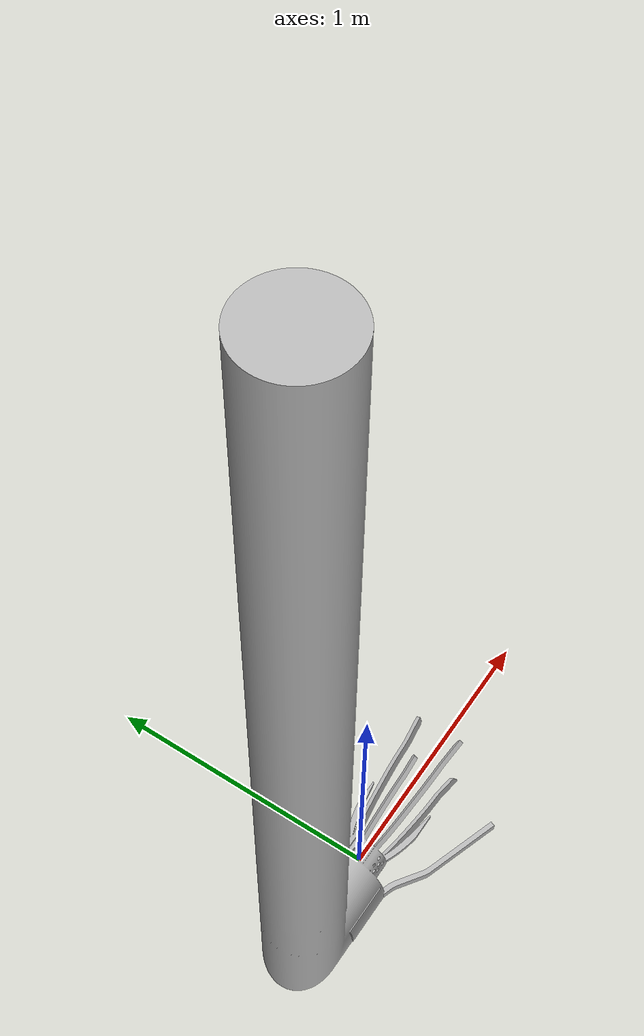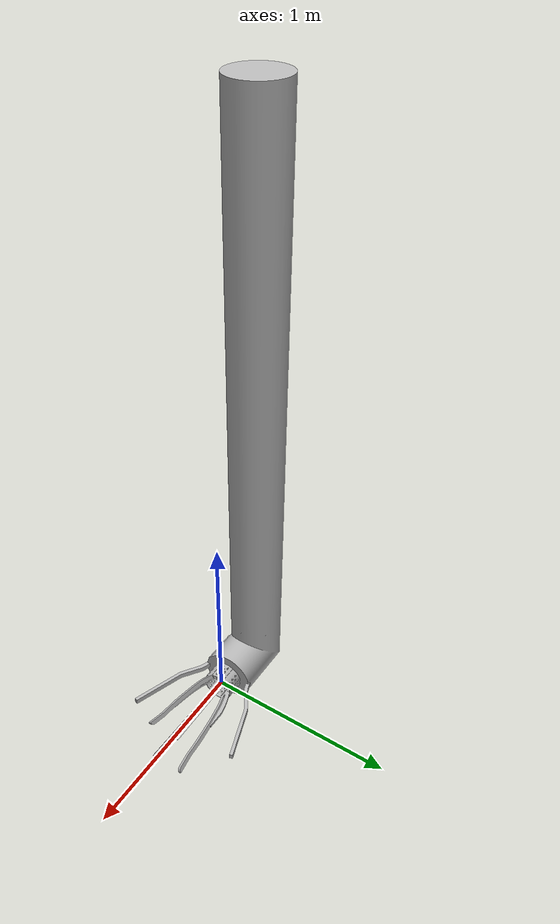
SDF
<?xml version="1.0"?>
<!-- created with Phobos 0.7 -->
<sdf version="1.5">
  <model name="deepleng_docking_station">
    <link name="docking_station">
      <pose>0 0 0 0 0 0</pose>
      <collision name="collision_tube_top">
        <pose>-0.34668 0 0.99545 0 0 0</pose>
        <geometry>
          <cylinder>
            <radius>0.14</radius>
            <length>2.20122</length>
          </cylinder>
        </geometry>
      </collision>
      <collision name="collision_guiding_rail_right">
        <pose>0 0 0 -3.14159 0 0</pose>
        <geometry>
          <mesh>
            <uri>model://deepleng_docking_station/meshes/small_guiding_rail.dae</uri>
          </mesh>
        </geometry>
      </collision>
      <collision name="collision_guiding_rail_top_left">
        <pose>0 0 0 -1.0472 0 0</pose>
        <geometry>
          <mesh>
            <uri>model://deepleng_docking_station/meshes/big_guiding_rail.dae</uri>
          </mesh>
        </geometry>
      </collision>
      <collision name="collision_guiding_rail_top_right">
        <pose>0 0 0 -2.0944 0 0</pose>
        <geometry>
          <mesh>
            <uri>model://deepleng_docking_station/meshes/big_guiding_rail.dae</uri>
          </mesh>
        </geometry>
      </collision>
      <collision name="collision_guiding_rail_bottom_right">
        <pose>0 0 0 2.0944 0 0</pose>
        <geometry>
          <mesh>
            <uri>model://deepleng_docking_station/meshes/big_guiding_rail.dae</uri>
          </mesh>
        </geometry>
      </collision>
      <collision name="collision_tube_bottom">
        <pose>-0.27205 0 0.00186 0 1.5708 0</pose>
        <geometry>
          <cylinder>
            <radius>0.14</radius>
            <length>0.4254</length>
          </cylinder>
        </geometry>
      </collision>
      <collision name="collision_guiding_rail_bottom_left">
        <pose>0 0 0 1.0472 0 0</pose>
        <geometry>
          <mesh>
            <uri>model://deepleng_docking_station/meshes/big_guiding_rail.dae</uri>
          </mesh>
        </geometry>
      </collision>
      <collision name="collision_guiding_rail_left">
        <pose>0 0 0 0 0 0</pose>
        <geometry>
          <mesh>
            <uri>model://deepleng_docking_station/meshes/small_guiding_rail.dae</uri>
          </mesh>
        </geometry>
      </collision>
      <visual name="visual_tube">
        <pose>0 0 0 0 0 0</pose>
        <geometry>
          <mesh>
            <uri>model://deepleng_docking_station/meshes/tube.dae</uri>
          </mesh>
        </geometry>
      </visual>
    </link>
    <link name="actuator_gripper_left">
      <pose>-0.09211 -0.10933 0.00159 0 0 -0.17453</pose>
      <collision name="collision_gripper_left">
        <pose>0 0 0 0 0 0</pose>
        <geometry>
          <mesh>
            <uri>model://deepleng_docking_station/meshes/gripper.dae</uri>
          </mesh>
        </geometry>
      </collision>
      <visual name="visual_gripper_left">
        <pose>0 0 0 0 0 0</pose>
        <geometry>
          <mesh>
            <uri>model://deepleng_docking_station/meshes/gripper.dae</uri>
          </mesh>
        </geometry>
      </visual>
    </link>
    <link name="actuator_gripper_right">
      <pose>-0.09211 0.10927 0.00159 0 0 0.17453</pose>
      <collision name="collision_gripper_right">
        <pose>0 0 0 -3.14159 0 0</pose>
        <geometry>
          <mesh>
            <uri>model://deepleng_docking_station/meshes/gripper.dae</uri>
          </mesh>
        </geometry>
      </collision>
      <visual name="visual_gripper_right">
        <pose>0 0 0 -3.141592264175415 -0.0 0.0</pose>
        <geometry>
          <mesh>
            <uri>model://deepleng_docking_station/meshes/gripper.dae</uri>
            <scale>1.0 1.0 1.0</scale>
          </mesh>
        </geometry>
      </visual>
    </link>
    <joint type="revolute" name="actuator_gripper_left">
      <parent>docking_station</parent>
      <child>actuator_gripper_left</child>
      <pose>0 0 0 0 0 0</pose>
      <axis>
        <xyz>0 0 1.0</xyz>
        <limit>
          <lower>-40.0</lower>
          <upper>40.0</upper>
          <effort>100.0</effort>
          <velocity>0.5</velocity>
        </limit>
      </axis>
    </joint>
    <joint type="revolute" name="actuator_gripper_right">
      <parent>docking_station</parent>
      <child>actuator_gripper_right</child>
      <pose>0 0 0 0 0 0</pose>
      <axis>
        <xyz>0 0 1.0</xyz>
        <limit>
          <lower>-3.0</lower>
          <upper>3.0</upper>
          <effort>100.0</effort>
          <velocity>0.5</velocity>
        </limit>
      </axis>
    </joint>
  </model>
</sdf>
